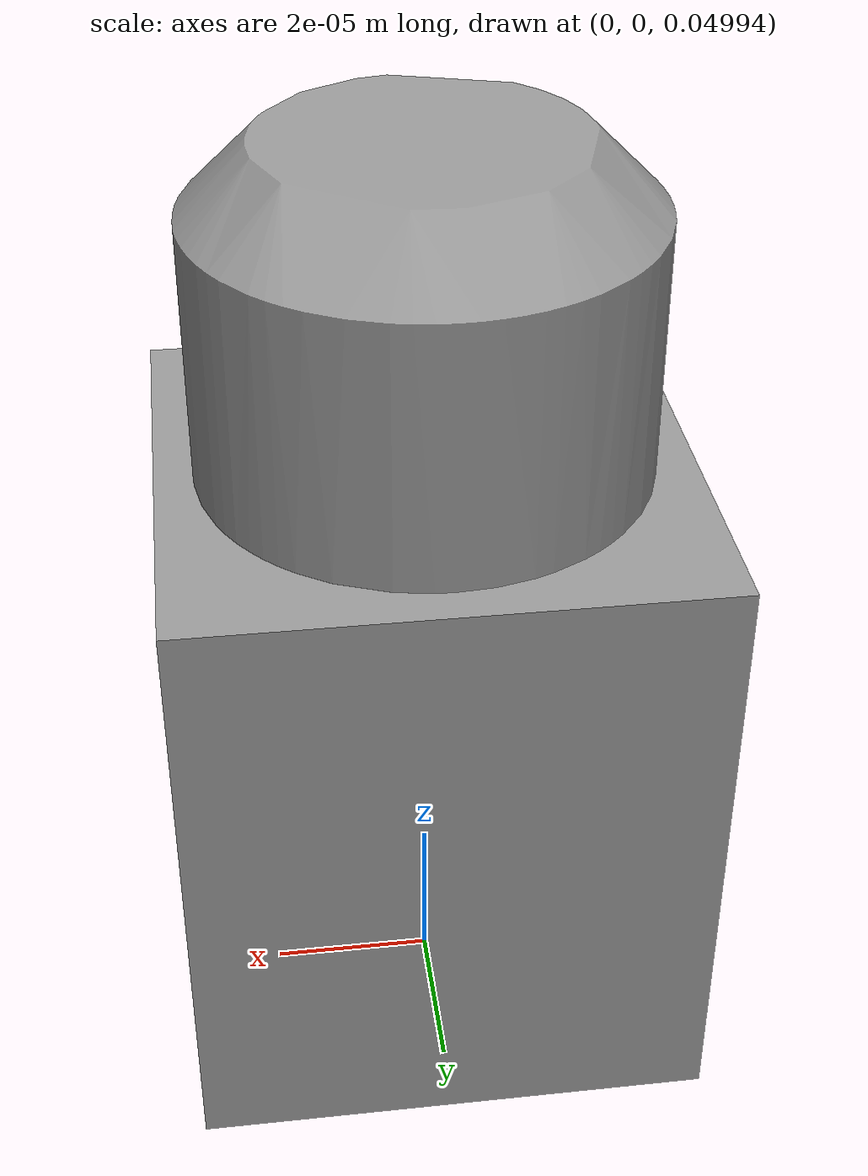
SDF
<?xml version="1.0"?>
<sdf version="1.4">
    <model name="lego_X1-Y1-Z2">
        <link name="link">
            <pose>0.0 0.0 0.05 0 0 0</pose>
            <inertial>
                <pose>1.89496e-06 -3.89054e-07 -0.000475081 0 0 0</pose>
                <mass>0.0802771</mass>
                <inertia>
                    <ixx>3.14179e-05</ixx>
                    <ixy>-2.69251e-09</ixy>
                    <ixz>-4.52438e-09</ixz>
                    <iyy>3.14364e-05</iyy>
                    <iyz>3.14783e-09</iyz>
                    <izz>1.98462e-05</izz>
                </inertia>
            </inertial>
            <collision name="collision">
                <geometry>
                    <mesh>
                        <scale>1 1 1</scale>
                        <uri>model://lego_X1-Y1-Z2/meshes/X1-Y1-Z2.stl</uri>
                        <scale>0.002 0.002 0.002 </scale>
                    </mesh>
                </geometry>

                <max_contacts>10</max_contacts>
                <surface>
                    <contact>
                        <ode>
                            <mu>0.5</mu>
                            <mu2>0.5</mu2>
                            <max_vel>0.01</max_vel>
                            <min_depth>0.0</min_depth>
                        </ode>
                    </contact>
                    <bounce>
                        <restitution_coefficient>0</restitution_coefficient>
                        <threshold>1e+06</threshold>
                    </bounce>
                    <friction>
                        <torsional>
                            <ode/>
                        </torsional>
                        <ode/>
                    </friction>
                </surface>
            </collision>
            <visual name="visual">
                <geometry>
                    <mesh>
                        <uri>model://lego_X1-Y1-Z2/meshes/X1-Y1-Z2.stl</uri>
                        <scale>0.002 0.002 0.002 </scale>
                    </mesh>
                </geometry>
                <material>
                    <script>
                    <uri>file://media/materials/scripts/gazebo.material</uri>
                    <name>Gazebo/Grey</name>
                    </script>
                    <shader type="vertex">
                        <normal_map>__default__</normal_map>
                    </shader>
                    <ambient>0.3 0.3 0.3 1</ambient>
                    <diffuse>0.7 0.7 0.7 1</diffuse>
                    <specular>0.01 0.01 0.01 1</specular>
                    <emissive>0 0 0 1</emissive>
                </material>
            </visual>
        </link>
    </model>
</sdf>
